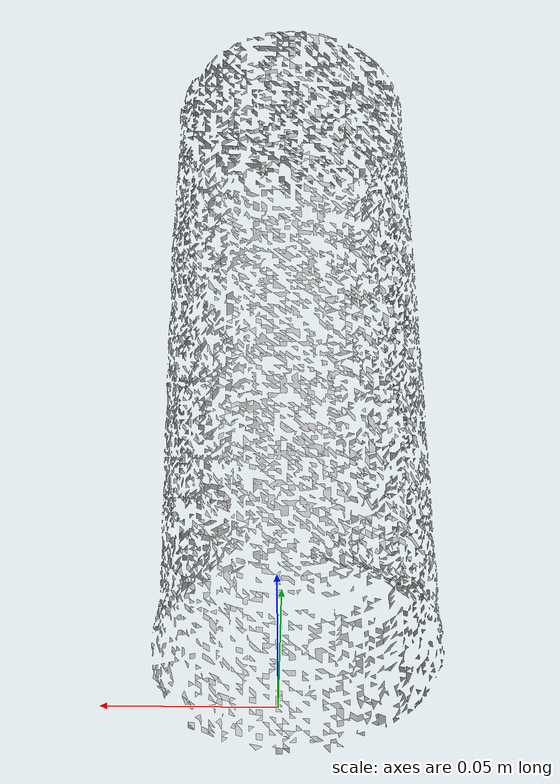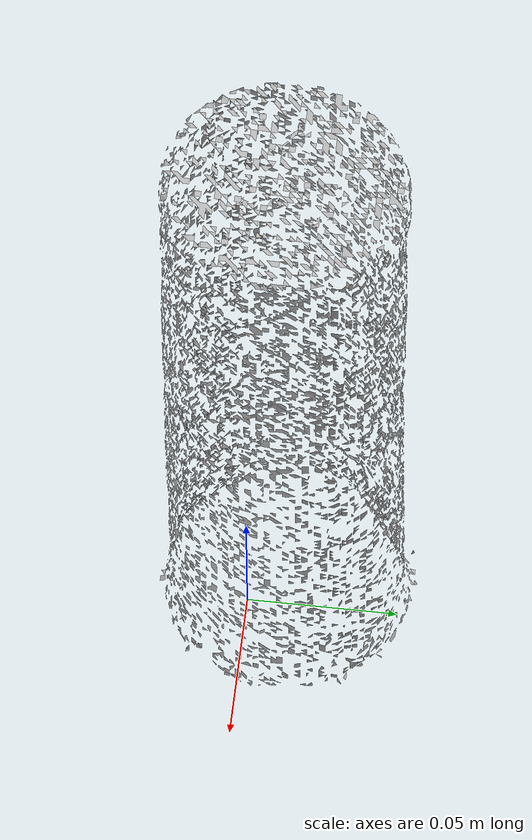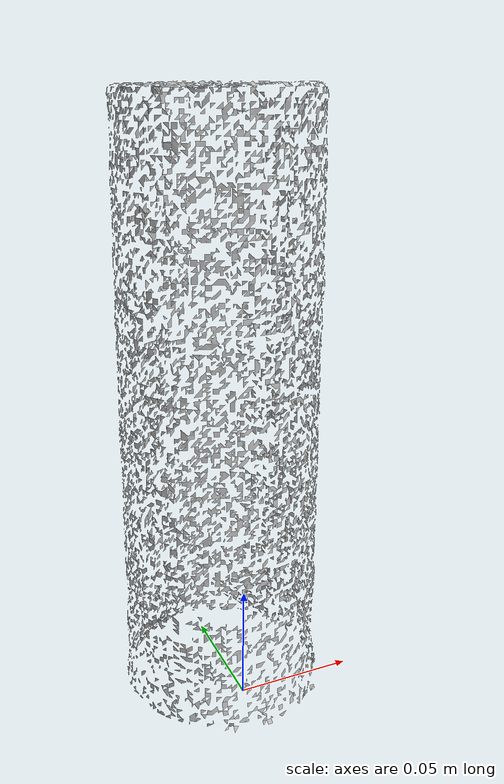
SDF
<?xml version='1.0'?>
<sdf version="1.4">
  <model name="chips_can">
    <static>false</static>
    <link name="link">
      <inertial>
        <pose>-0.004935076789853457 0.012018813662666437 0.1233055043572925 3.1366784929366305 -5.2102373995591675e-05 1.9138462724181036</pose>
        <mass>0.0010817455855551142</mass>
        <inertia>
          <ixx>5.5349800451895955e-06</ixx>
          <ixy>-6.3834715122061815e-22</ixy>
          <ixz>-5.925324700153715e-22</ixz>
          <iyy>5.508049224129916e-06</iyy>
          <iyz>-1.0164283364776184e-21</iyz>
          <izz>7.848117618937134e-07</izz>
        </inertia>
      </inertial>
      <collision name="collision">
        <geometry>
          <mesh>
            <!-- Use a downsampled mesh for collisions -->
            <uri>model://001_chips_can/downsampled.obj</uri>
	        </mesh>
        </geometry>
        <surface>
      </surface>
      </collision>
      <visual name="visual">
        <geometry>
          <mesh>
            <uri>model://001_chips_can/tsdf/textured.obj</uri>
	        </mesh>
        </geometry>
        <material>
          <script>
            <uri>model://001_chips_can/chips_can.material</uri>
            <name>chips_can</name>
          </script>
        </material>
      </visual>
    </link>
  </model>
</sdf>
